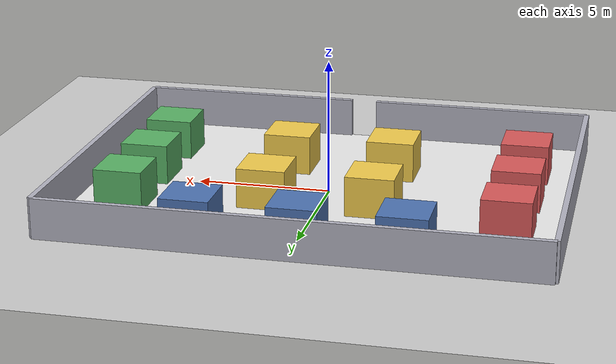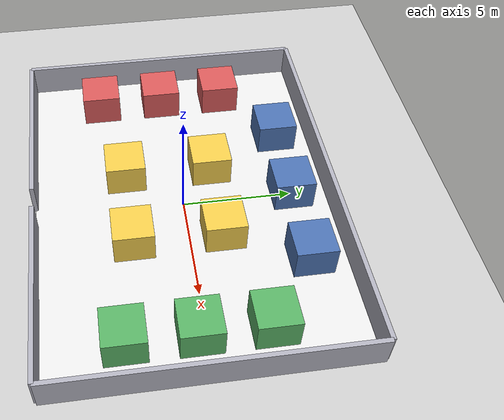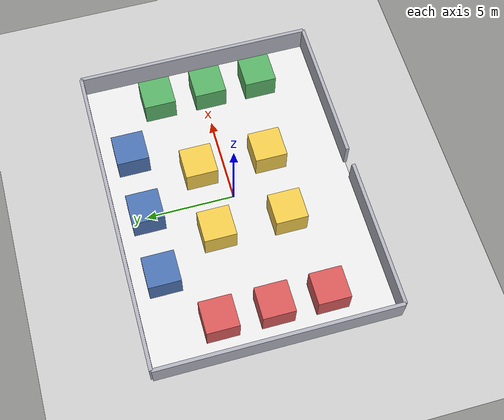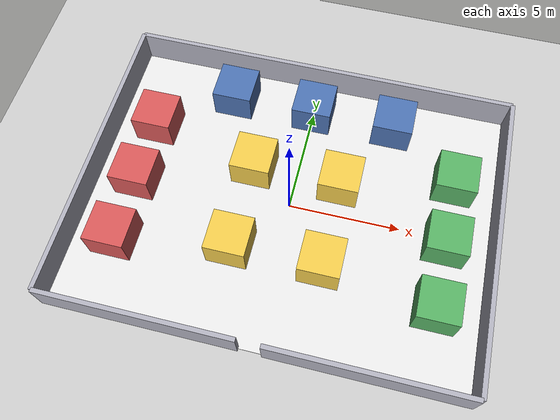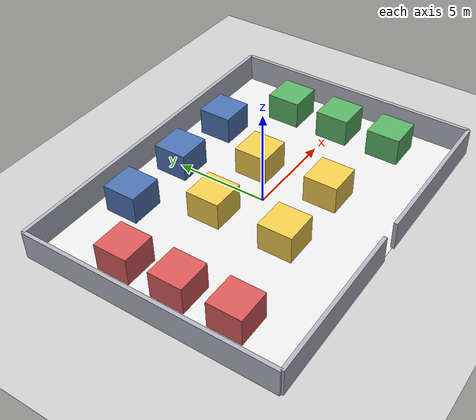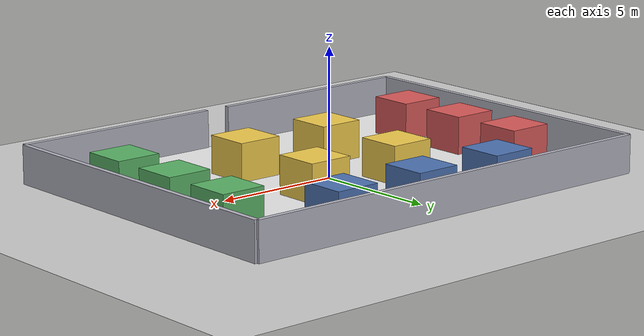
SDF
<?xml version="1.0" ?>
<sdf version="1.6">
  <world name="exhibition_hall">
    <include>
      <uri>model://ground_plane</uri>
    </include>
    <include>
      <uri>model://sun</uri>
    </include>

    <scene>
      <ambient>0.6 0.6 0.6 1</ambient>
      <background>0.95 0.95 0.95 1</background>
    </scene>

    <physics type="ode">
      <real_time_update_rate>1000</real_time_update_rate>
      <max_step_size>0.001</max_step_size>
    </physics>

    <model name="floor">
      <static>true</static>
      <pose>0 0 0 0 0 0</pose>
      <link name="link">
        <collision name="collision">
          <geometry>
            <box>
              <size>18 13.5 0.02</size>
            </box>
          </geometry>
        </collision>
        <visual name="visual">
          <geometry>
            <box>
              <size>18 13.5 0.02</size>
            </box>
          </geometry>
          <material>
            <ambient>0.92 0.92 0.92 1</ambient>
            <diffuse>0.92 0.92 0.92 1</diffuse>
          </material>
        </visual>
      </link>
    </model>

    <model name="north_wall">
      <static>true</static>
      <pose>0 6.75 0.75 0 0 0</pose>
      <link name="link">
        <collision name="collision">
          <geometry>
            <box>
              <size>18 0.2 1.5</size>
            </box>
          </geometry>
        </collision>
        <visual name="visual">
          <geometry>
            <box>
              <size>18 0.2 1.5</size>
            </box>
          </geometry>
          <material>
            <ambient>0.7 0.7 0.75 1</ambient>
            <diffuse>0.7 0.7 0.75 1</diffuse>
          </material>
        </visual>
      </link>
    </model>

    <model name="south_wall_left">
      <static>true</static>
      <pose>-4.75 -6.75 0.75 0 0 0</pose>
      <link name="link">
        <collision name="collision">
          <geometry>
            <box>
              <size>8.5 0.2 1.5</size>
            </box>
          </geometry>
        </collision>
        <visual name="visual">
          <geometry>
            <box>
              <size>8.5 0.2 1.5</size>
            </box>
          </geometry>
          <material>
            <ambient>0.7 0.7 0.75 1</ambient>
            <diffuse>0.7 0.7 0.75 1</diffuse>
          </material>
        </visual>
      </link>
    </model>

    <model name="south_wall_right">
      <static>true</static>
      <pose>4.75 -6.75 0.75 0 0 0</pose>
      <link name="link">
        <collision name="collision">
          <geometry>
            <box>
              <size>8.5 0.2 1.5</size>
            </box>
          </geometry>
        </collision>
        <visual name="visual">
          <geometry>
            <box>
              <size>8.5 0.2 1.5</size>
            </box>
          </geometry>
          <material>
            <ambient>0.7 0.7 0.75 1</ambient>
            <diffuse>0.7 0.7 0.75 1</diffuse>
          </material>
        </visual>
      </link>
    </model>

    <model name="west_wall">
      <static>true</static>
      <pose>-9 0 0.75 0 0 0</pose>
      <link name="link">
        <collision name="collision">
          <geometry>
            <box>
              <size>0.2 13.5 1.5</size>
            </box>
          </geometry>
        </collision>
        <visual name="visual">
          <geometry>
            <box>
              <size>0.2 13.5 1.5</size>
            </box>
          </geometry>
          <material>
            <ambient>0.7 0.7 0.75 1</ambient>
            <diffuse>0.7 0.7 0.75 1</diffuse>
          </material>
        </visual>
      </link>
    </model>

    <model name="east_wall">
      <static>true</static>
      <pose>9 0 0.75 0 0 0</pose>
      <link name="link">
        <collision name="collision">
          <geometry>
            <box>
              <size>0.2 13.5 1.5</size>
            </box>
          </geometry>
        </collision>
        <visual name="visual">
          <geometry>
            <box>
              <size>0.2 13.5 1.5</size>
            </box>
          </geometry>
          <material>
            <ambient>0.7 0.7 0.75 1</ambient>
            <diffuse>0.7 0.7 0.75 1</diffuse>
          </material>
        </visual>
      </link>
    </model>

    <model name="top_booth_left">
      <static>true</static>
      <pose>-3.8 5.0 0.75 0 0 0</pose>
      <link name="link">
        <collision name="collision">
          <geometry>
            <box>
              <size>1.8 1.8 1.5</size>
            </box>
          </geometry>
        </collision>
        <visual name="visual">
          <geometry>
            <box>
              <size>1.8 1.8 1.5</size>
            </box>
          </geometry>
          <material>
            <ambient>0.3 0.45 0.7 1</ambient>
            <diffuse>0.3 0.45 0.7 1</diffuse>
          </material>
        </visual>
      </link>
    </model>

    <model name="top_booth_center">
      <static>true</static>
      <pose>0 5.0 0.75 0 0 0</pose>
      <link name="link">
        <collision name="collision">
          <geometry>
            <box>
              <size>1.8 1.8 1.5</size>
            </box>
          </geometry>
        </collision>
        <visual name="visual">
          <geometry>
            <box>
              <size>1.8 1.8 1.5</size>
            </box>
          </geometry>
          <material>
            <ambient>0.3 0.45 0.7 1</ambient>
            <diffuse>0.3 0.45 0.7 1</diffuse>
          </material>
        </visual>
      </link>
    </model>

    <model name="top_booth_right">
      <static>true</static>
      <pose>3.8 5.0 0.75 0 0 0</pose>
      <link name="link">
        <collision name="collision">
          <geometry>
            <box>
              <size>1.8 1.8 1.5</size>
            </box>
          </geometry>
        </collision>
        <visual name="visual">
          <geometry>
            <box>
              <size>1.8 1.8 1.5</size>
            </box>
          </geometry>
          <material>
            <ambient>0.3 0.45 0.7 1</ambient>
            <diffuse>0.3 0.45 0.7 1</diffuse>
          </material>
        </visual>
      </link>
    </model>

    <model name="left_booth_top">
      <static>true</static>
      <pose>-7.0 2.7 0.75 0 0 0</pose>
      <link name="link">
        <collision name="collision">
          <geometry>
            <box>
              <size>1.8 1.8 1.5</size>
            </box>
          </geometry>
        </collision>
        <visual name="visual">
          <geometry>
            <box>
              <size>1.8 1.8 1.5</size>
            </box>
          </geometry>
          <material>
            <ambient>0.85 0.35 0.35 1</ambient>
            <diffuse>0.85 0.35 0.35 1</diffuse>
          </material>
        </visual>
      </link>
    </model>

    <model name="left_booth_mid">
      <static>true</static>
      <pose>-7.0 -0.3 0.75 0 0 0</pose>
      <link name="link">
        <collision name="collision">
          <geometry>
            <box>
              <size>1.8 1.8 1.5</size>
            </box>
          </geometry>
        </collision>
        <visual name="visual">
          <geometry>
            <box>
              <size>1.8 1.8 1.5</size>
            </box>
          </geometry>
          <material>
            <ambient>0.85 0.35 0.35 1</ambient>
            <diffuse>0.85 0.35 0.35 1</diffuse>
          </material>
        </visual>
      </link>
    </model>

    <model name="left_booth_bottom">
      <static>true</static>
      <pose>-7.0 -3.3 0.75 0 0 0</pose>
      <link name="link">
        <collision name="collision">
          <geometry>
            <box>
              <size>1.8 1.8 1.5</size>
            </box>
          </geometry>
        </collision>
        <visual name="visual">
          <geometry>
            <box>
              <size>1.8 1.8 1.5</size>
            </box>
          </geometry>
          <material>
            <ambient>0.85 0.35 0.35 1</ambient>
            <diffuse>0.85 0.35 0.35 1</diffuse>
          </material>
        </visual>
      </link>
    </model>

    <model name="right_booth_top">
      <static>true</static>
      <pose>7.0 2.7 0.75 0 0 0</pose>
      <link name="link">
        <collision name="collision">
          <geometry>
            <box>
              <size>1.8 1.8 1.5</size>
            </box>
          </geometry>
        </collision>
        <visual name="visual">
          <geometry>
            <box>
              <size>1.8 1.8 1.5</size>
            </box>
          </geometry>
          <material>
            <ambient>0.35 0.7 0.4 1</ambient>
            <diffuse>0.35 0.7 0.4 1</diffuse>
          </material>
        </visual>
      </link>
    </model>

    <model name="right_booth_mid">
      <static>true</static>
      <pose>7.0 -0.3 0.75 0 0 0</pose>
      <link name="link">
        <collision name="collision">
          <geometry>
            <box>
              <size>1.8 1.8 1.5</size>
            </box>
          </geometry>
        </collision>
        <visual name="visual">
          <geometry>
            <box>
              <size>1.8 1.8 1.5</size>
            </box>
          </geometry>
          <material>
            <ambient>0.35 0.7 0.4 1</ambient>
            <diffuse>0.35 0.7 0.4 1</diffuse>
          </material>
        </visual>
      </link>
    </model>

    <model name="right_booth_bottom">
      <static>true</static>
      <pose>7.0 -3.3 0.75 0 0 0</pose>
      <link name="link">
        <collision name="collision">
          <geometry>
            <box>
              <size>1.8 1.8 1.5</size>
            </box>
          </geometry>
        </collision>
        <visual name="visual">
          <geometry>
            <box>
              <size>1.8 1.8 1.5</size>
            </box>
          </geometry>
          <material>
            <ambient>0.35 0.7 0.4 1</ambient>
            <diffuse>0.35 0.7 0.4 1</diffuse>
          </material>
        </visual>
      </link>
    </model>

    <model name="center_booth_left_top">
      <static>true</static>
      <pose>-2.0 1.5 0.75 0 0 0</pose>
      <link name="link">
        <collision name="collision">
          <geometry>
            <box>
              <size>1.8 1.8 1.5</size>
            </box>
          </geometry>
        </collision>
        <visual name="visual">
          <geometry>
            <box>
              <size>1.8 1.8 1.5</size>
            </box>
          </geometry>
          <material>
            <ambient>0.95 0.8 0.3 1</ambient>
            <diffuse>0.95 0.8 0.3 1</diffuse>
          </material>
        </visual>
      </link>
    </model>

    <model name="center_booth_right_top">
      <static>true</static>
      <pose>2.0 1.5 0.75 0 0 0</pose>
      <link name="link">
        <collision name="collision">
          <geometry>
            <box>
              <size>1.8 1.8 1.5</size>
            </box>
          </geometry>
        </collision>
        <visual name="visual">
          <geometry>
            <box>
              <size>1.8 1.8 1.5</size>
            </box>
          </geometry>
          <material>
            <ambient>0.95 0.8 0.3 1</ambient>
            <diffuse>0.95 0.8 0.3 1</diffuse>
          </material>
        </visual>
      </link>
    </model>

    <model name="center_booth_left_bottom">
      <static>true</static>
      <pose>-2.0 -2.5 0.75 0 0 0</pose>
      <link name="link">
        <collision name="collision">
          <geometry>
            <box>
              <size>1.8 1.8 1.5</size>
            </box>
          </geometry>
        </collision>
        <visual name="visual">
          <geometry>
            <box>
              <size>1.8 1.8 1.5</size>
            </box>
          </geometry>
          <material>
            <ambient>0.95 0.8 0.3 1</ambient>
            <diffuse>0.95 0.8 0.3 1</diffuse>
          </material>
        </visual>
      </link>
    </model>

    <model name="center_booth_right_bottom">
      <static>true</static>
      <pose>2.0 -2.5 0.75 0 0 0</pose>
      <link name="link">
        <collision name="collision">
          <geometry>
            <box>
              <size>1.8 1.8 1.5</size>
            </box>
          </geometry>
        </collision>
        <visual name="visual">
          <geometry>
            <box>
              <size>1.8 1.8 1.5</size>
            </box>
          </geometry>
          <material>
            <ambient>0.95 0.8 0.3 1</ambient>
            <diffuse>0.95 0.8 0.3 1</diffuse>
          </material>
        </visual>
      </link>
    </model>
  </world>
</sdf>
